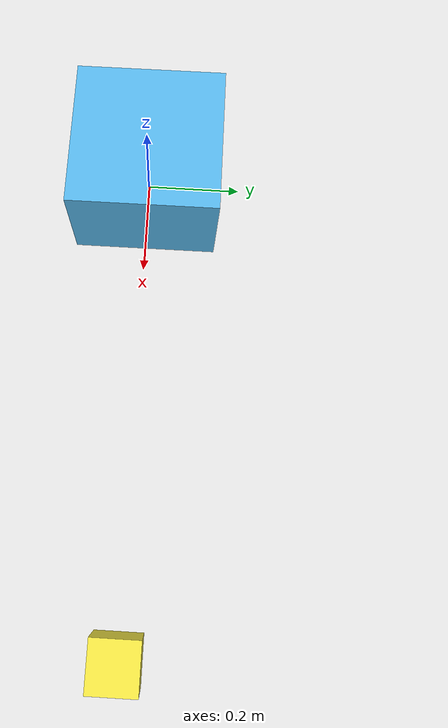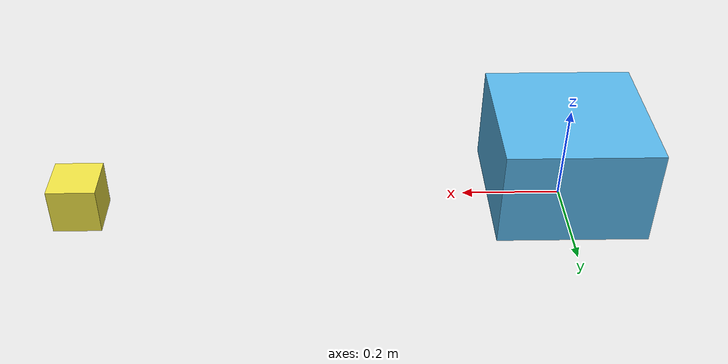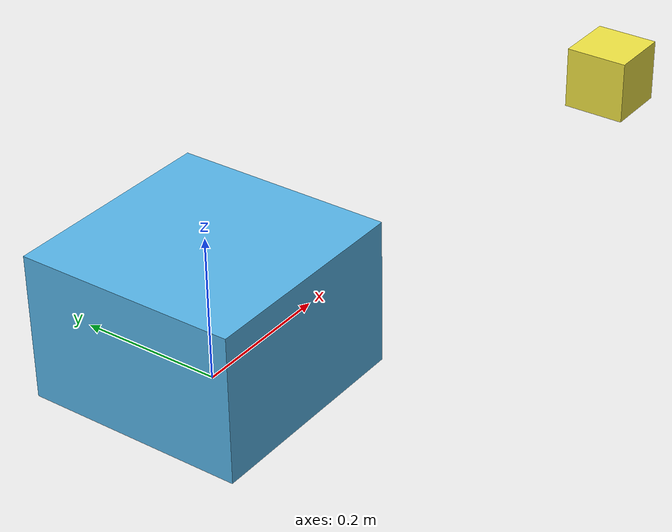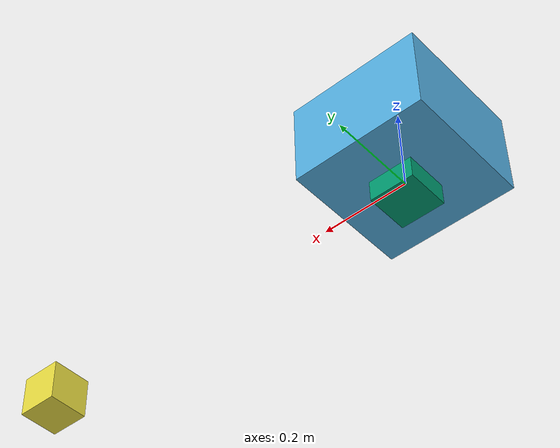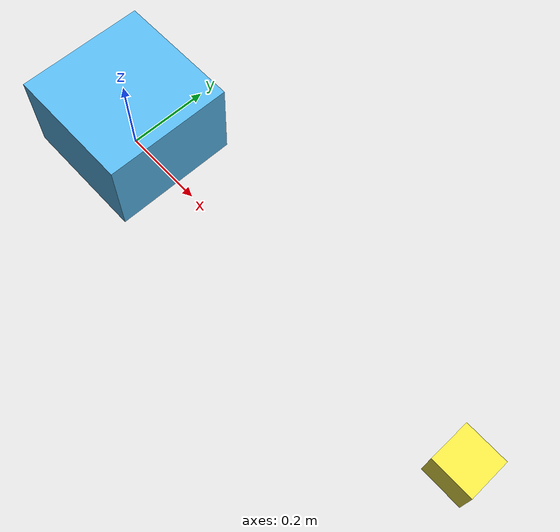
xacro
<?xml version="1.0"?>
<robot name="test_model">

  <!-- root link, on the ground just below the model origin -->
  <link name="base_footprint">
   <visual>
      <origin xyz="0 0 0" rpy="0 0 0" />
      <geometry>
        <box size="0.001 0.001 0.001" />
      </geometry>
    </visual>
  </link>

  <joint name="base_link_joint" type="fixed">
    <origin xyz="0.0 0 .1" rpy="0 0 0" />
    <parent link="base_footprint"/>
    <child link="base_link" />
  </joint>

  <!-- the model -->
  <link name="base_link">
    <inertial>
      <mass value="50" />
      <origin xyz="0 0 0" />
      <inertia ixx="50.0" ixy="0.0" ixz="0.0"
        iyy="50.0" iyz="0.0"
        izz="50.0" />
    </inertial>
    <visual>
      <geometry>
        <box size=".3 .3 .2" /> <!-- does not need to match collision -->
      </geometry>
    </visual>
    <collision>
      <origin xyz="0 0 0" />
      <geometry>
        <box size=".3 .3 .2" /> <!-- does not need to match collision -->
      </geometry>
    </collision>
  </link>

 <link name="left_wheel">
   <visual>
      <origin xyz="-1 0 0" rpy="0 0 0" />
      <geometry>
        <box size="0.1 0.1 0.1" />
      </geometry>
    </visual>
  </link>

  <joint name="base_link_left_wheel_joint" type="fixed">
    <origin xyz="1 0 0" rpy="0 0 0" />
    <parent link="base_footprint"/>
    <child link="left_wheel" />
  </joint>

 <link name="right_wheel">
   <visual>
      <origin xyz="0 0 0" rpy="0 0 0" />
      <geometry>
        <box size="0.1 0.1 0.1" />
      </geometry>
    </visual>
  </link>

  <joint name="base_link_right_wheel_joint" type="fixed">
    <origin xyz="1 0 0" rpy="0 0 0" />
    <parent link="base_footprint"/>
    <child link="right_wheel" />
  </joint>

 <gazebo>
  <plugin name="differential_drive_controller" filename="libgazebo_ros_diff_drive.so">
    <alwaysOn>true</alwaysOn>
    <updateRate>20</updateRate>
    <leftJoint>base_link_right_wheel_joint</leftJoint>
    <rightJoint>base_link_left_wheel_joint</rightJoint>
    <wheelSeparation>0.5380</wheelSeparation>
    <wheelDiameter>0.2410</wheelDiameter>
    <torque>20</torque>
    <commandTopic>cmd_vel</commandTopic>
    <odometryTopic>odometry</odometryTopic>
    <odometryFrame>map </odometryFrame>
    <robotBaseFrame>base_footprint</robotBaseFrame>
    <legacyMode>false</legacyMode>
  </plugin>
</gazebo>

</robot>
